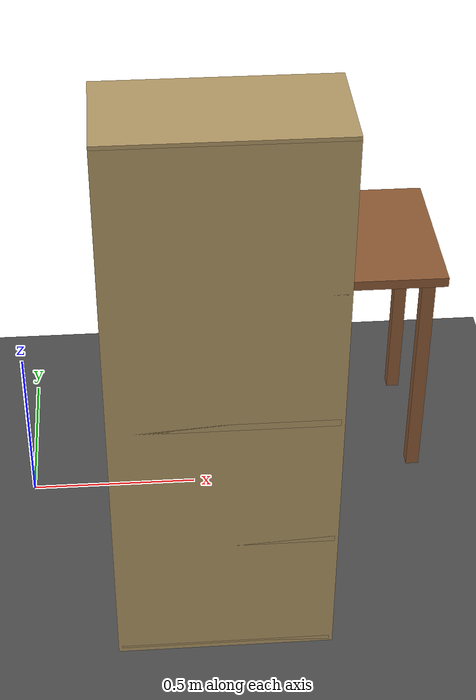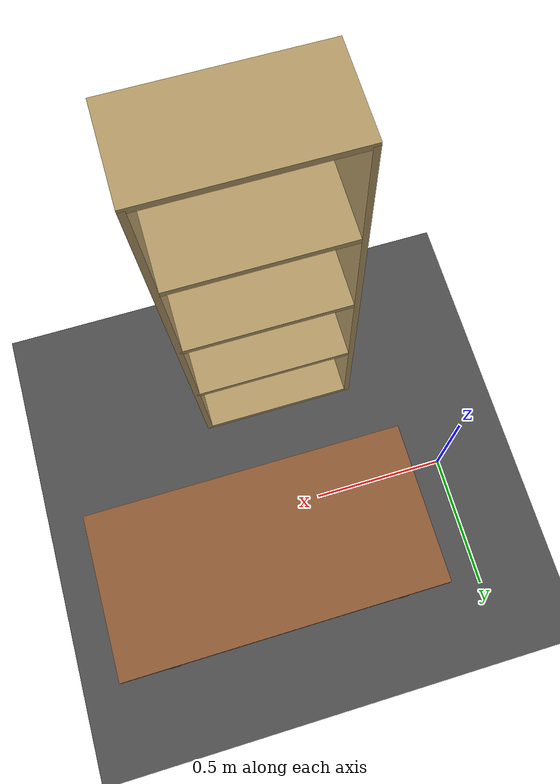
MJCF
<mujoco model="rby1-custom-desk">
  <compiler autolimits="true" boundmass="0" balanceinertia="true" angle="radian"/>
  <option timestep="0.002" gravity="0 0 -9.8" impratio="10" integrator="implicitfast" cone="elliptic" jacobian="sparse" solver="Newton" noslip_iterations="4">
    <flag contact="enable" warmstart="enable" energy="enable" multiccd="enable"/>
  </option>
  <visual>
    <global offwidth="1280" offheight="720"/>
    <headlight ambient="0.35 0.35 0.35" diffuse="0.4 0.4 0.4" active="1"/>
    <quality shadowsize="16384"/>
    <map znear="0.001"/>
  </visual>
  <default>
    <default class="/">
      <default class="__VISUAL_MJT__">
        <geom contype="0" conaffinity="0" group="0" mass="1e-8"/>
      </default>
      <default class="__STRUCTURAL_MJT__">
        <geom contype="8" conaffinity="15" group="4" friction="0.9 0.9 0.001" solref="0.025 1" solimp="0.998 0.998 0.001" density="500"/>
        <default class="__STRUCTURAL_WALL_MJT__">
          <geom group="3"/>
        </default>
      </default>
      <default class="__DYNAMIC_MJT__">
        <geom conaffinity="15" group="4" friction="4.5 4.5 0.005" solref="0.025 1" solimp="0.998 0.998 0.001" density="500"/>
      </default>
      <default class="__ARTICULABLE_DYNAMIC_MJT__">
        <geom contype="0" conaffinity="7" group="4" friction="0.9 0.9 0.001" solref="0.025 1" solimp="0.998 0.998 0.001" density="500"/>
      </default>
    </default>
  </default>
  <worldbody>
    <geom name="ground" type="plane" size="5 5 0.01" rgba="0.3 0.3 0.3 1" pos="0 0 0" contype="8" conaffinity="15"/>
    <body name="desk" pos="0.75 0.25 0">
      <geom name="desk_top" type="box" size="0.5 0.25 0.015" pos="0 0 0.72" rgba="0.55 0.35 0.2 1" contype="8" conaffinity="15"/>
      <geom name="desk_leg_fl" type="box" size="0.02 0.02 0.36" pos="-0.45 -0.2 0.36" rgba="0.55 0.35 0.2 1" contype="8" conaffinity="15"/>
      <geom name="desk_leg_fr" type="box" size="0.02 0.02 0.36" pos="0.45 -0.2 0.36" rgba="0.55 0.35 0.2 1" contype="8" conaffinity="15"/>
      <geom name="desk_leg_bl" type="box" size="0.02 0.02 0.36" pos="-0.45 0.2 0.36" rgba="0.55 0.35 0.2 1" contype="8" conaffinity="15"/>
      <geom name="desk_leg_br" type="box" size="0.02 0.02 0.36" pos="0.45 0.2 0.36" rgba="0.55 0.35 0.2 1" contype="8" conaffinity="15"/>
    </body>
    <body name="bookcase" pos="0.55 -0.55 0">
      <geom name="bc_back" type="box" size="0.3 0.01 0.8" pos="0 -0.14 0.8" rgba="0.7 0.6 0.4 1" contype="8" conaffinity="15"/>
      <geom name="bc_left" type="box" size="0.01 0.15 0.8" pos="-0.29 0 0.8" rgba="0.7 0.6 0.4 1" contype="8" conaffinity="15"/>
      <geom name="bc_right" type="box" size="0.01 0.15 0.8" pos="0.29 0 0.8" rgba="0.7 0.6 0.4 1" contype="8" conaffinity="15"/>
      <geom name="bc_bottom" type="box" size="0.29 0.15 0.01" pos="0 0 0.01" rgba="0.7 0.6 0.4 1" contype="8" conaffinity="15"/>
      <geom name="bc_shelf_0" type="box" size="0.29 0.15 0.01" pos="0 0 0.4" rgba="0.7 0.6 0.4 1" contype="8" conaffinity="15"/>
      <geom name="bc_shelf_1" type="box" size="0.29 0.15 0.01" pos="0 0 0.8" rgba="0.7 0.6 0.4 1" contype="8" conaffinity="15"/>
      <geom name="bc_shelf_2" type="box" size="0.29 0.15 0.01" pos="0 0 1.2" rgba="0.7 0.6 0.4 1" contype="8" conaffinity="15"/>
      <geom name="bc_top" type="box" size="0.3 0.15 0.01" pos="0 0 1.6" rgba="0.7 0.6 0.4 1" contype="8" conaffinity="15"/>
    </body>
  </worldbody>
</mujoco>
